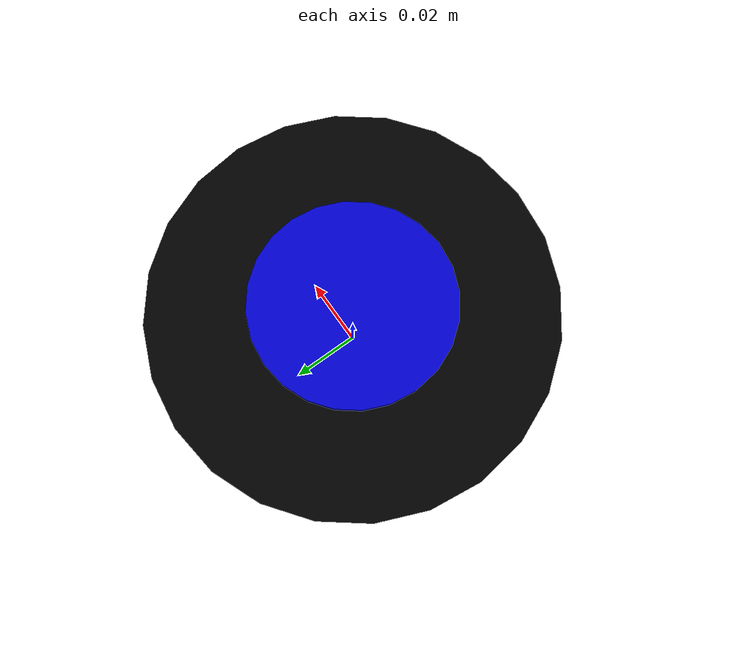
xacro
<robot name="myfirst">
  <material name="blue">
    <color rgba="0 0 0.8 1"/>
  </material>
  <material name="black">
    <color rgba="0 0 0 1"/>
  </material>

  <link name="base_link">
    <visual>
      <geometry>
        <cylinder length="0.081" radius="0.05"/>
      </geometry>
      <material name="black"/>
    </visual>
  </link>

  <link name="stroke">
    <visual>
      <geometry>
        <cylinder length="0.038" radius="0.025"/>
      </geometry>
      <material name="blue"/>
    </visual>
  </link>

  <joint name="base_to_stroke" type="prismatic">
    <parent link="base_link"/>
    <child link="stroke"/>
    <origin xyz="0 0 0.0255"/> <!-- start 8mm above base -->
    <axis xyz="0 0 1"/>
    <limit effort="1000.0" lower="0" upper="0.034" velocity="0.5"/>
  </joint>
</robot>
